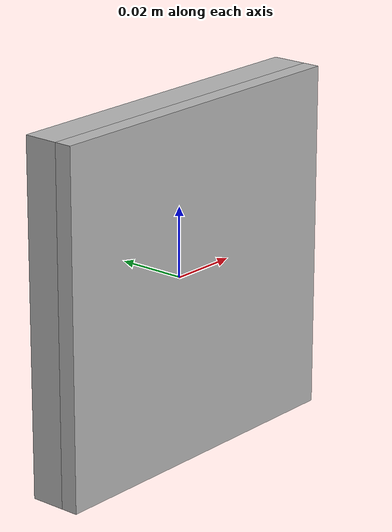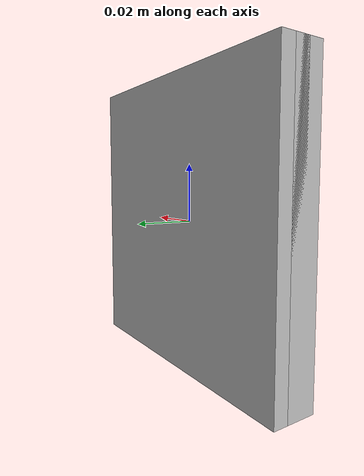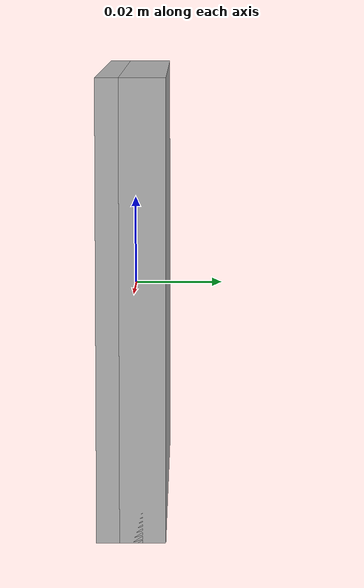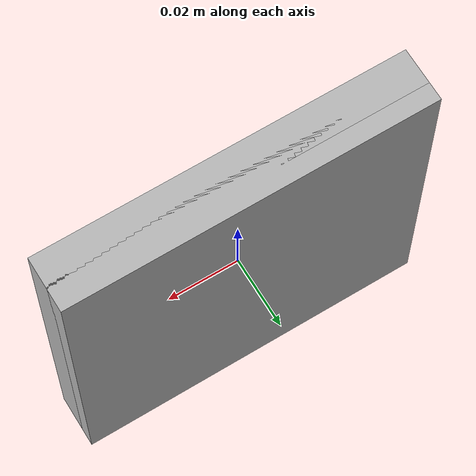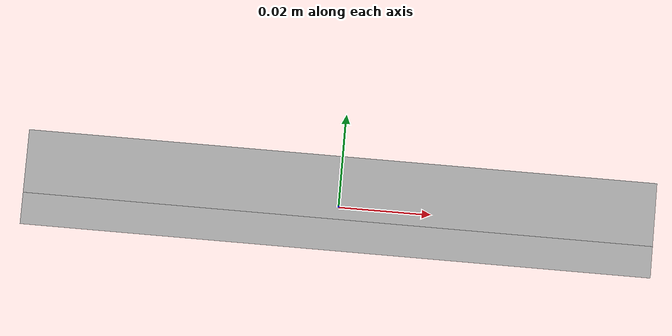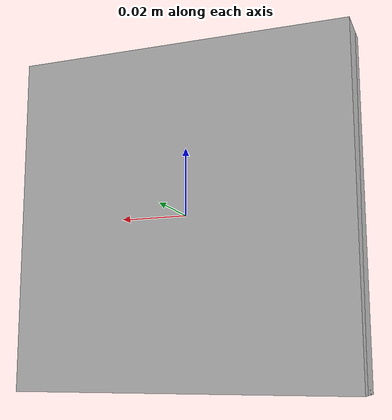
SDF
<?xml version="1.0" ?>
<sdf version="1.6">
  <model name="traffic_parking">
    <static>true</static>
    <link name="box">
     <visual name="front_visual">
     <pose>0 0.0025 0 0 0 0 </pose>
       <geometry>
         <box>
           <size>0.10 0.010 0.10 </size>
         </box>
       </geometry>
        <material>
          <script>
            <uri>model://traffic_parking/materials/scripts</uri>
            <uri>model://traffic_parking/materials/textures</uri>
            <name>traffic_parking</name>
          </script>
        </material>
     </visual>

     <visual name="rear_visual">
       <pose>0 -0.0025 0 0 0 0 </pose>
         <geometry>
           <box>
             <size>0.10 0.010 0.10</size>
           </box>
         </geometry>
     </visual>
    </link>
  </model>
</sdf>
